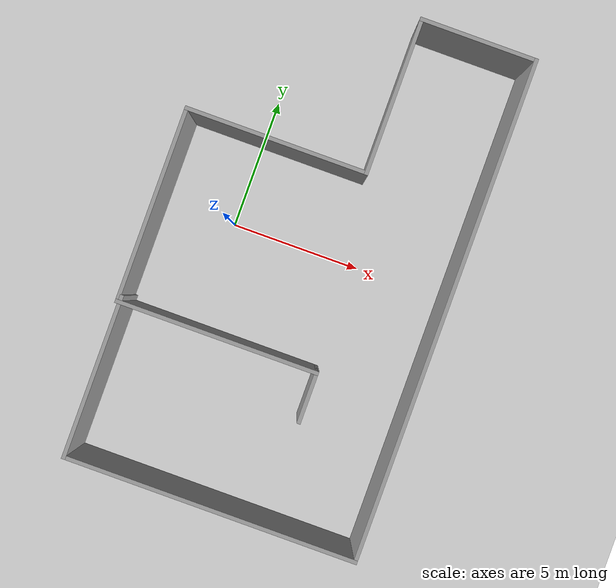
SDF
<sdf version="1.7">
 <world name="default">
  <light name="sun" type="directional">
   <pose>0 0 10 0 -0 0</pose>
   <diffuse>0.8 0.8 0.8 1</diffuse>
   <specular>0.2 0.2 0.2 1</specular>
   <attenuation>
    <range>1000</range>
    <constant>0.9</constant>
    <linear>0.01</linear>
    <quadratic>0.001</quadratic>
   </attenuation>
   <direction>-0.5 0.1 -0.9</direction>
   <spot><inner_angle>0</inner_angle><outer_angle>0</outer_angle><falloff>0</falloff></spot>
  </light>
  <model name="ground_plane">
   <static>1</static>
   <link name="link">
    <collision name="collision">
     <geometry><plane><normal>0 0 1</normal><size>100 100</size></plane></geometry>
     <surface><friction><ode><mu>100</mu><mu2>50</mu2></ode></friction></surface>
    </collision>
    <visual name="visual">
     <cast_shadows>0</cast_shadows>
     <geometry><plane><normal>0 0 1</normal><size>100 100</size></plane></geometry>
     <material>
      <script><uri>file://media/materials/scripts/gazebo.material</uri><name>Gazebo/Grey</name></script>
     </material>
    </visual>
   </link>
  </model>
  <gravity>0 0 -9.8</gravity>
  <magnetic_field>6e-06 2.3e-05 -4.2e-05</magnetic_field>
  <atmosphere type="adiabatic"/>
  <physics type="ode">
   <max_step_size>0.001</max_step_size>
   <real_time_factor>1</real_time_factor>
   <real_time_update_rate>1000</real_time_update_rate>
  </physics>
  <scene><ambient>0.4 0.4 0.4 1</ambient><background>0.7 0.7 0.7 1</background><shadows>1</shadows></scene>
  <spherical_coordinates>
   <surface_model>EARTH_WGS84</surface_model>
   <latitude_deg>0</latitude_deg>
   <longitude_deg>0</longitude_deg>
   <elevation>0</elevation>
   <heading_deg>0</heading_deg>
  </spherical_coordinates>
  <model name="room1">
   <pose>2.78823 -0.464554 0 0 -0 0</pose>
   <link name="Wall_10">
    <collision name="Wall_10_Collision">
     <geometry><box><size>7.75 0.15 2.5</size></box></geometry>
     <pose>0 0 1.25 0 -0 0</pose>
    </collision>
    <visual name="Wall_10_Visual">
     <pose>0 0 1.25 0 -0 0</pose>
     <geometry><box><size>7.75 0.15 2.5</size></box></geometry>
     <material>
      <script><uri>file://media/materials/scripts/gazebo.material</uri><name>Gazebo/Grey</name></script>
      <ambient>1 1 1 1</ambient>
     </material>
     <meta><layer>0</layer></meta>
    </visual>
    <pose>-1.8 -3.65 0 0 -0 0</pose>
   </link>
   <link name="Wall_11">
    <collision name="Wall_11_Collision">
     <geometry><box><size>2 0.15 2.5</size></box></geometry>
     <pose>0 0 1.25 0 -0 0</pose>
    </collision>
    <visual name="Wall_11_Visual">
     <pose>0 0 1.25 0 -0 0</pose>
     <geometry><box><size>2 0.15 2.5</size></box></geometry>
     <material>
      <script><uri>file://media/materials/scripts/gazebo.material</uri><name>Gazebo/Grey</name></script>
      <ambient>1 1 1 1</ambient>
     </material>
     <meta><layer>0</layer></meta>
    </visual>
    <pose>2 -4.575 0 0 -0 -1.5708</pose>
   </link>
   <link name="Wall_3">
    <collision name="Wall_3_Collision">
     <geometry><box><size>6.25 0.15 2.5</size></box></geometry>
     <pose>0 0 1.25 0 -0 0</pose>
    </collision>
    <visual name="Wall_3_Visual">
     <pose>0 0 1.25 0 -0 0</pose>
     <geometry><box><size>6.25 0.15 2.5</size></box></geometry>
     <material>
      <script><uri>file://media/materials/scripts/gazebo.material</uri><name>Gazebo/Grey</name></script>
      <ambient>1 1 1 1</ambient>
     </material>
     <meta><layer>0</layer></meta>
    </visual>
    <pose>-5.5 -6.5 0 0 -0 -1.5708</pose>
   </link>
   <link name="Wall_4">
    <collision name="Wall_4_Collision">
     <geometry><box><size>11.25 0.15 2.5</size></box></geometry>
     <pose>0 0 1.25 0 -0 0</pose>
    </collision>
    <visual name="Wall_4_Visual">
     <pose>0 0 1.25 0 -0 0</pose>
     <geometry><box><size>11.25 0.15 2.5</size></box></geometry>
     <material>
      <script><uri>file://media/materials/scripts/gazebo.material</uri><name>Gazebo/Grey</name></script>
      <ambient>1 1 1 1</ambient>
     </material>
     <meta><layer>0</layer></meta>
    </visual>
    <pose>0.05 -9.55 0 0 -0 0</pose>
   </link>
   <link name="Wall_5">
    <collision name="Wall_5_Collision">
     <geometry><box><size>19.25 0.15 2.5</size></box></geometry>
     <pose>0 0 1.25 0 -0 0</pose>
    </collision>
    <visual name="Wall_5_Visual">
     <pose>0 0 1.25 0 -0 0</pose>
     <geometry><box><size>19.25 0.15 2.5</size></box></geometry>
     <material>
      <script><uri>file://media/materials/scripts/gazebo.material</uri><name>Gazebo/Grey</name></script>
      <ambient>1 1 1 1</ambient>
     </material>
     <meta><layer>0</layer></meta>
    </visual>
    <pose>5.6 -0 0 0 -0 1.5708</pose>
   </link>
   <link name="Wall_6">
    <collision name="Wall_6_Collision">
     <geometry><box><size>4.5 0.15 2.5</size></box></geometry>
     <pose>0 0 1.25 0 -0 0</pose>
    </collision>
    <visual name="Wall_6_Visual">
     <pose>0 0 1.25 0 -0 0</pose>
     <geometry><box><size>4.5 0.15 2.5</size></box></geometry>
     <material>
      <script><uri>file://media/materials/scripts/gazebo.material</uri><name>Gazebo/Grey</name></script>
      <ambient>1 1 1 1</ambient>
     </material>
     <meta><layer>0</layer></meta>
    </visual>
    <pose>3.425 9.55 0 0 -0 3.14159</pose>
   </link>
   <link name="Wall_7">
    <collision name="Wall_7_Collision">
     <geometry><box><size>6 0.15 2.5</size></box></geometry>
     <pose>0 0 1.25 0 -0 0</pose>
    </collision>
    <visual name="Wall_7_Visual">
     <pose>0 0 1.25 0 -0 0</pose>
     <geometry><box><size>6 0.15 2.5</size></box></geometry>
     <material>
      <script><uri>file://media/materials/scripts/gazebo.material</uri><name>Gazebo/Grey</name></script>
      <ambient>1 1 1 1</ambient>
     </material>
     <meta><layer>0</layer></meta>
    </visual>
    <pose>1.25 6.625 0 0 -0 -1.5708</pose>
   </link>
   <link name="Wall_8">
    <collision name="Wall_8_Collision">
     <geometry><box><size>7 0.15 2.5</size></box></geometry>
     <pose>0 0 1.25 0 -0 0</pose>
    </collision>
    <visual name="Wall_8_Visual">
     <pose>0 0 1.25 0 -0 0</pose>
     <geometry><box><size>7 0.15 2.5</size></box></geometry>
     <material>
      <script><uri>file://media/materials/scripts/gazebo.material</uri><name>Gazebo/Grey</name></script>
      <ambient>1 1 1 1</ambient>
     </material>
     <meta><layer>0</layer></meta>
    </visual>
    <pose>-2.175 3.7 0 0 -0 3.14159</pose>
   </link>
   <link name="Wall_9">
    <collision name="Wall_9_Collision">
     <geometry><box><size>7.5 0.15 2.5</size></box></geometry>
     <pose>0 0 1.25 0 -0 0</pose>
    </collision>
    <visual name="Wall_9_Visual">
     <pose>0 0 1.25 0 -0 0</pose>
     <geometry><box><size>7.5 0.15 2.5</size></box></geometry>
     <material>
      <script><uri>file://media/materials/scripts/gazebo.material</uri><name>Gazebo/Grey</name></script>
      <ambient>1 1 1 1</ambient>
     </material>
     <meta><layer>0</layer></meta>
    </visual>
    <pose>-5.6 0.025 0 0 -0 -1.5708</pose>
   </link>
   <static>1</static>
  </model>
 </world>
</sdf>
